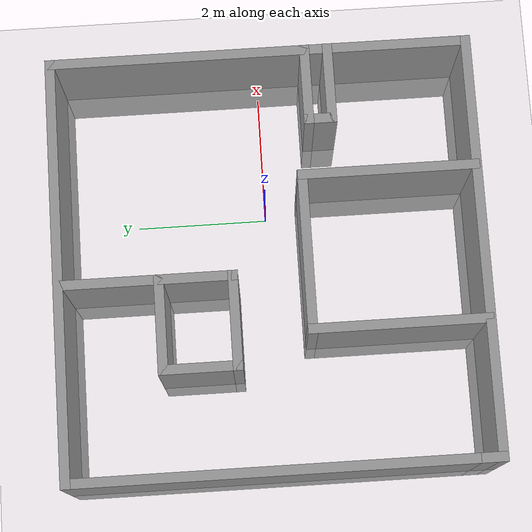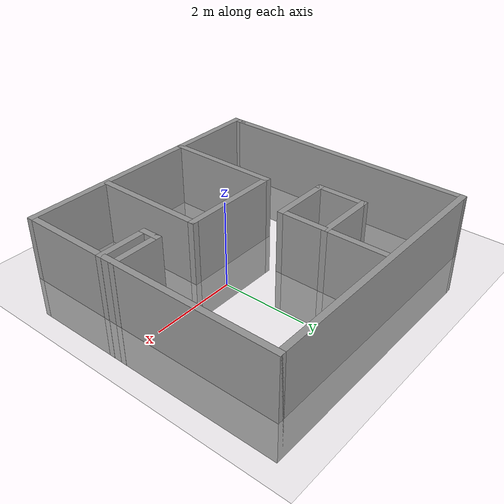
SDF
<sdf version="1.6">
 <world name="default">
  <light name="sun" type="directional">
   <pose>0 0 10 0 -0 0</pose>
   <diffuse>0.8 0.8 0.8 1</diffuse>
   <specular>0.2 0.2 0.2 1</specular>
   <attenuation>
    <range>1000</range>
    <constant>0.9</constant>
    <linear>0.01</linear>
    <quadratic>0.001</quadratic>
   </attenuation>
   <direction>-0.5 0.1 -0.9</direction>
  </light>
  <model name="ground_plane">
   <static>1</static>
   <link name="link">
    <collision name="collision">
     <geometry><plane><normal>0 0 1</normal><size>100 100</size></plane></geometry>
     <surface>
      <contact><collide_bitmask>65535</collide_bitmask></contact>
      <friction><ode><mu>100</mu><mu2>50</mu2></ode></friction>
     </surface>
    </collision>
    <visual name="visual">
     <cast_shadows>0</cast_shadows>
     <geometry><plane><normal>0 0 1</normal><size>100 100</size></plane></geometry>
     <material>
      <script><uri>file://media/materials/scripts/gazebo.material</uri><name>Gazebo/Grey</name></script>
     </material>
    </visual>
   </link>
  </model>
  <gravity>0 0 -9.8</gravity>
  <magnetic_field>6e-06 2.3e-05 -4.2e-05</magnetic_field>
  <atmosphere type="adiabatic"/>
  <physics name="default_physics" default="0" type="ode">
   <max_step_size>0.001</max_step_size>
   <real_time_factor>1</real_time_factor>
   <real_time_update_rate>1000</real_time_update_rate>
  </physics>
  <scene><ambient>0.4 0.4 0.4 1</ambient><background>0.7 0.7 0.7 1</background><shadows>1</shadows></scene>
  <audio><device>default</device></audio>
  <spherical_coordinates>
   <surface_model>EARTH_WGS84</surface_model>
   <latitude_deg>0</latitude_deg>
   <longitude_deg>0</longitude_deg>
   <elevation>0</elevation>
   <heading_deg>0</heading_deg>
  </spherical_coordinates>
  <model name="capstone_model">
   <pose>-0.883272 -0.028745 0 0 -0 0</pose>
   <link name="Wall_10">
    <collision name="Wall_10_Collision">
     <geometry><box><size>1.25 0.15 2.5</size></box></geometry>
     <pose>0 0 0.25 0 -0 0</pose>
    </collision>
    <visual name="Wall_10_Visual">
     <pose>0 0 0.25 0 -0 0</pose>
     <geometry><box><size>1.25 0.15 2.5</size></box></geometry>
     <material>
      <script><uri>file://media/materials/scripts/gazebo.material</uri><name>Gazebo/Grey</name></script>
      <ambient>1 1 1 1</ambient>
     </material>
     <meta><layer>0</layer></meta>
    </visual>
    <pose>2.6258 -1.05917 0 0 -0 0</pose>
   </link>
   <link name="Wall_17">
    <collision name="Wall_17_Collision">
     <geometry><box><size>2.75 0.15 2.5</size></box></geometry>
     <pose>0 0 0.25 0 -0 0</pose>
    </collision>
    <visual name="Wall_17_Visual">
     <pose>0 0 0.25 0 -0 0</pose>
     <geometry><box><size>2.75 0.15 2.5</size></box></geometry>
     <material>
      <script><uri>file://media/materials/scripts/gazebo.material</uri><name>Gazebo/Grey</name></script>
      <ambient>1 1 1 1</ambient>
     </material>
     <meta><layer>0</layer></meta>
    </visual>
    <pose>1.2164 -1.84855 0 0 -0 1.5708</pose>
   </link>
   <link name="Wall_18">
    <collision name="Wall_18_Collision">
     <geometry><box><size>2.5 0.15 2.5</size></box></geometry>
     <pose>0 0 0.25 0 -0 0</pose>
    </collision>
    <visual name="Wall_18_Visual">
     <pose>0 0 0.25 0 -0 0</pose>
     <geometry><box><size>2.5 0.15 2.5</size></box></geometry>
     <material>
      <script><uri>file://media/materials/scripts/gazebo.material</uri><name>Gazebo/Grey</name></script>
      <ambient>1 1 1 1</ambient>
     </material>
     <meta><layer>0</layer></meta>
    </visual>
    <pose>0.041405 -0.548555 0 0 -0 3.14159</pose>
   </link>
   <link name="Wall_19">
    <collision name="Wall_19_Collision">
     <geometry><box><size>2.75 0.15 2.5</size></box></geometry>
     <pose>0 0 0.25 0 -0 0</pose>
    </collision>
    <visual name="Wall_19_Visual">
     <pose>0 0 0.25 0 -0 0</pose>
     <geometry><box><size>2.75 0.15 2.5</size></box></geometry>
     <material>
      <script><uri>file://media/materials/scripts/gazebo.material</uri><name>Gazebo/Grey</name></script>
      <ambient>1 1 1 1</ambient>
     </material>
     <meta><layer>0</layer></meta>
    </visual>
    <pose>-1.13359 -1.84855 0 0 -0 -1.5708</pose>
   </link>
   <link name="Wall_2">
    <collision name="Wall_2_Collision">
     <geometry><box><size>6.25 0.15 2.5</size></box></geometry>
     <pose>0 0 0.25 0 -0 0</pose>
    </collision>
    <visual name="Wall_2_Visual">
     <pose>0 0 0.25 0 -0 0</pose>
     <geometry><box><size>6.25 0.15 2.5</size></box></geometry>
     <material>
      <script><uri>file://media/materials/scripts/gazebo.material</uri><name>Gazebo/Grey</name></script>
      <ambient>1 1 1 1</ambient>
     </material>
     <meta><layer>0</layer></meta>
    </visual>
    <pose>-3.1758 0.125 0 0 -0 1.5708</pose>
   </link>
   <link name="Wall_21">
    <collision name="Wall_21_Collision">
     <geometry><box><size>2.73685 0.15 2.5</size></box></geometry>
     <pose>0 0 0.25 0 -0 0</pose>
    </collision>
    <visual name="Wall_21_Visual">
     <pose>0 0 0.25 0 -0 0</pose>
     <geometry><box><size>2.73685 0.15 2.5</size></box></geometry>
     <material>
      <script><uri>file://media/materials/scripts/gazebo.material</uri><name>Gazebo/Grey</name></script>
      <ambient>1 1 1 1</ambient>
     </material>
     <meta><layer>0</layer></meta>
    </visual>
    <pose>-0.256431 1.87675 0 0 -0 -1.5708</pose>
   </link>
   <link name="Wall_24">
    <collision name="Wall_24_Collision">
     <geometry><box><size>1.5 0.15 2.5</size></box></geometry>
     <pose>0 0 0.25 0 -0 0</pose>
    </collision>
    <visual name="Wall_24_Visual">
     <pose>0 0 0.25 0 -0 0</pose>
     <geometry><box><size>1.5 0.15 2.5</size></box></geometry>
     <material>
      <script><uri>file://media/materials/scripts/gazebo.material</uri><name>Gazebo/Grey</name></script>
      <ambient>1 1 1 1</ambient>
     </material>
     <meta><layer>0</layer></meta>
    </visual>
    <pose>-0.931431 0.583326 0 0 -0 3.14159</pose>
   </link>
   <link name="Wall_25">
    <collision name="Wall_25_Collision">
     <geometry><box><size>1.25 0.15 2.5</size></box></geometry>
     <pose>0 0 0.25 0 -0 0</pose>
    </collision>
    <visual name="Wall_25_Visual">
     <pose>0 0 0.25 0 -0 0</pose>
     <geometry><box><size>1.25 0.15 2.5</size></box></geometry>
     <material>
      <script><uri>file://media/materials/scripts/gazebo.material</uri><name>Gazebo/Grey</name></script>
      <ambient>1 1 1 1</ambient>
     </material>
     <meta><layer>0</layer></meta>
    </visual>
    <pose>-1.60643 1.13333 0 0 -0 1.5708</pose>
   </link>
   <link name="Wall_26">
    <collision name="Wall_26_Collision">
     <geometry><box><size>1.5 0.15 2.5</size></box></geometry>
     <pose>0 0 0.25 0 -0 0</pose>
    </collision>
    <visual name="Wall_26_Visual">
     <pose>0 0 0.25 0 -0 0</pose>
     <geometry><box><size>1.5 0.15 2.5</size></box></geometry>
     <material>
      <script><uri>file://media/materials/scripts/gazebo.material</uri><name>Gazebo/Grey</name></script>
      <ambient>1 1 1 1</ambient>
     </material>
     <meta><layer>0</layer></meta>
    </visual>
    <pose>-0.931431 1.68333 0 0 -0 0</pose>
   </link>
   <link name="Wall_3">
    <collision name="Wall_3_Collision">
     <geometry><box><size>6.5 0.15 2.5</size></box></geometry>
     <pose>0 0 0.25 0 -0 0</pose>
    </collision>
    <visual name="Wall_3_Visual">
     <pose>0 0 0.25 0 -0 0</pose>
     <geometry><box><size>6.5 0.15 2.5</size></box></geometry>
     <material>
      <script><uri>file://media/materials/scripts/gazebo.material</uri><name>Gazebo/Grey</name></script>
      <ambient>1 1 1 1</ambient>
     </material>
     <meta><layer>0</layer></meta>
    </visual>
    <pose>-0.000803 3.175 0 0 -0 0</pose>
   </link>
   <link name="Wall_4">
    <collision name="Wall_4_Collision">
     <geometry><box><size>6.5 0.15 2.5</size></box></geometry>
     <pose>0 0 0.25 0 -0 0</pose>
    </collision>
    <visual name="Wall_4_Visual">
     <pose>0 0 0.25 0 -0 0</pose>
     <geometry><box><size>6.5 0.15 2.5</size></box></geometry>
     <material>
      <script><uri>file://media/materials/scripts/gazebo.material</uri><name>Gazebo/Grey</name></script>
      <ambient>1 1 1 1</ambient>
     </material>
     <meta><layer>0</layer></meta>
    </visual>
    <pose>3.1742 0 0 0 -0 -1.5708</pose>
   </link>
   <link name="Wall_5">
    <collision name="Wall_5_Collision">
     <geometry><box><size>6.5 0.15 2.5</size></box></geometry>
     <pose>0 0 0.25 0 -0 0</pose>
    </collision>
    <visual name="Wall_5_Visual">
     <pose>0 0 0.25 0 -0 0</pose>
     <geometry><box><size>6.5 0.15 2.5</size></box></geometry>
     <material>
      <script><uri>file://media/materials/scripts/gazebo.material</uri><name>Gazebo/Grey</name></script>
      <ambient>1 1 1 1</ambient>
     </material>
     <meta><layer>0</layer></meta>
    </visual>
    <pose>-0.000803 -3.175 0 0 -0 3.14159</pose>
   </link>
   <link name="Wall_6">
    <collision name="Wall_6_Collision">
     <geometry><box><size>0.4 0.15 2.5</size></box></geometry>
     <pose>0 0 0.25 0 -0 0</pose>
    </collision>
    <visual name="Wall_6_Visual">
     <pose>0 0 0.25 0 -0 0</pose>
     <geometry><box><size>0.4 0.15 2.5</size></box></geometry>
     <material>
      <script><uri>file://media/materials/scripts/gazebo.material</uri><name>Gazebo/Grey</name></script>
      <ambient>1 1 1 1</ambient>
     </material>
     <meta><layer>0</layer></meta>
    </visual>
    <pose>-3.1758 -3.05 0 0 -0 1.5708</pose>
   </link>
   <link name="Wall_8">
    <collision name="Wall_8_Collision">
     <geometry><box><size>1.25 0.15 2.5</size></box></geometry>
     <pose>0 0 0.25 0 -0 0</pose>
    </collision>
    <visual name="Wall_8_Visual">
     <pose>0 0 0.25 0 -0 0</pose>
     <geometry><box><size>1.25 0.15 2.5</size></box></geometry>
     <material>
      <script><uri>file://media/materials/scripts/gazebo.material</uri><name>Gazebo/Grey</name></script>
      <ambient>1 1 1 1</ambient>
     </material>
     <meta><layer>0</layer></meta>
    </visual>
    <pose>2.6258 -0.70917 0 0 -0 3.14159</pose>
   </link>
   <link name="Wall_9">
    <collision name="Wall_9_Collision">
     <geometry><box><size>0.5 0.15 2.5</size></box></geometry>
     <pose>0 0 0.25 0 -0 0</pose>
    </collision>
    <visual name="Wall_9_Visual">
     <pose>0 0 0.25 0 -0 0</pose>
     <geometry><box><size>0.5 0.15 2.5</size></box></geometry>
     <material>
      <script><uri>file://media/materials/scripts/gazebo.material</uri><name>Gazebo/Grey</name></script>
      <ambient>1 1 1 1</ambient>
     </material>
     <meta><layer>0</layer></meta>
    </visual>
    <pose>2.0758 -0.88417 0 0 -0 -1.5708</pose>
   </link>
   <static>1</static>
  </model>
 </world>
</sdf>
